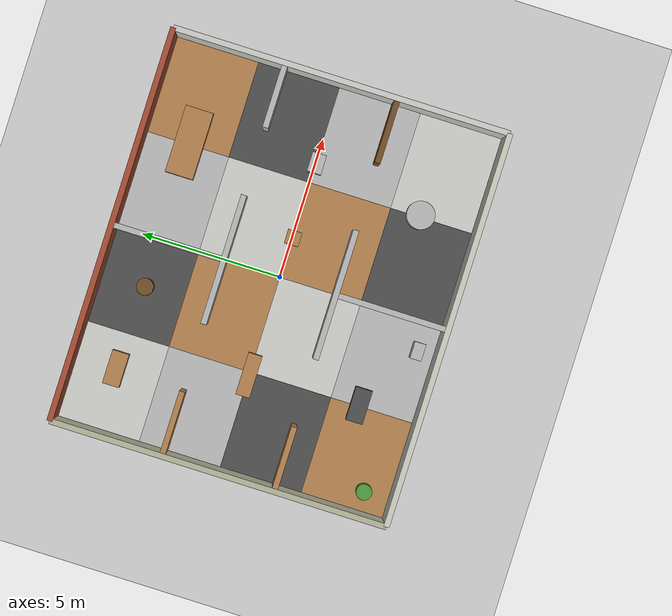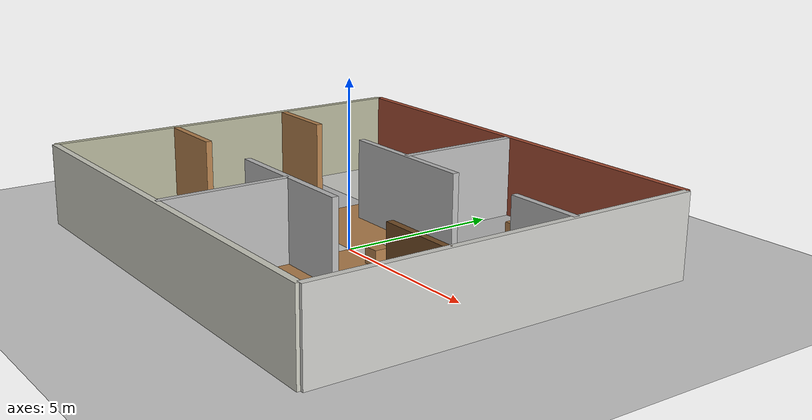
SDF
<?xml version="1.0"?>
<sdf version="1.6">
  <world name="office">
    <include><uri>model://sun</uri></include>
    <include><uri>model://ground_plane</uri></include>

    <model name="floor_skin">
      <static>true</static>
      <link name="tiles">
        <visual name="f00"><pose>-5.175 -4.425 0.002 0 0 0</pose><geometry><box><size>3.45 2.95 0.004</size></box></geometry>
          <material><script><uri>file://media/materials/scripts/gazebo.material</uri><name>Gazebo/WoodFloor</name></script></material></visual>
        <visual name="f01"><pose>-1.725 -4.425 0.002 0 0 0</pose><geometry><box><size>3.45 2.95 0.004</size></box></geometry>
          <material><script><uri>file://media/materials/scripts/gazebo.material</uri><name>Gazebo/Pedestrian</name></script></material></visual>
        <visual name="f02"><pose>1.725 -4.425 0.002 0 0 0</pose><geometry><box><size>3.45 2.95 0.004</size></box></geometry>
          <material><script><uri>file://media/materials/scripts/gazebo.material</uri><name>Gazebo/Road</name></script></material></visual>
        <visual name="f03"><pose>5.175 -4.425 0.002 0 0 0</pose><geometry><box><size>3.45 2.95 0.004</size></box></geometry>
          <material><script><uri>file://media/materials/scripts/gazebo.material</uri><name>Gazebo/CeilingTiled</name></script></material></visual>
        <visual name="f10"><pose>-5.175 -1.475 0.002 0 0 0</pose><geometry><box><size>3.45 2.95 0.004</size></box></geometry>
          <material><script><uri>file://media/materials/scripts/gazebo.material</uri><name>Gazebo/Road</name></script></material></visual>
        <visual name="f11"><pose>-1.725 -1.475 0.002 0 0 0</pose><geometry><box><size>3.45 2.95 0.004</size></box></geometry>
          <material><script><uri>file://media/materials/scripts/gazebo.material</uri><name>Gazebo/CeilingTiled</name></script></material></visual>
        <visual name="f12"><pose>1.725 -1.475 0.002 0 0 0</pose><geometry><box><size>3.45 2.95 0.004</size></box></geometry>
          <material><script><uri>file://media/materials/scripts/gazebo.material</uri><name>Gazebo/WoodFloor</name></script></material></visual>
        <visual name="f13"><pose>5.175 -1.475 0.002 0 0 0</pose><geometry><box><size>3.45 2.95 0.004</size></box></geometry>
          <material><script><uri>file://media/materials/scripts/gazebo.material</uri><name>Gazebo/Pedestrian</name></script></material></visual>
        <visual name="f20"><pose>-5.175 1.475 0.002 0 0 0</pose><geometry><box><size>3.45 2.95 0.004</size></box></geometry>
          <material><script><uri>file://media/materials/scripts/gazebo.material</uri><name>Gazebo/Pedestrian</name></script></material></visual>
        <visual name="f21"><pose>-1.725 1.475 0.002 0 0 0</pose><geometry><box><size>3.45 2.95 0.004</size></box></geometry>
          <material><script><uri>file://media/materials/scripts/gazebo.material</uri><name>Gazebo/WoodFloor</name></script></material></visual>
        <visual name="f22"><pose>1.725 1.475 0.002 0 0 0</pose><geometry><box><size>3.45 2.95 0.004</size></box></geometry>
          <material><script><uri>file://media/materials/scripts/gazebo.material</uri><name>Gazebo/CeilingTiled</name></script></material></visual>
        <visual name="f23"><pose>5.175 1.475 0.002 0 0 0</pose><geometry><box><size>3.45 2.95 0.004</size></box></geometry>
          <material><script><uri>file://media/materials/scripts/gazebo.material</uri><name>Gazebo/Road</name></script></material></visual>
        <visual name="f30"><pose>-5.175 4.425 0.002 0 0 0</pose><geometry><box><size>3.45 2.95 0.004</size></box></geometry>
          <material><script><uri>file://media/materials/scripts/gazebo.material</uri><name>Gazebo/CeilingTiled</name></script></material></visual>
        <visual name="f31"><pose>-1.725 4.425 0.002 0 0 0</pose><geometry><box><size>3.45 2.95 0.004</size></box></geometry>
          <material><script><uri>file://media/materials/scripts/gazebo.material</uri><name>Gazebo/Road</name></script></material></visual>
        <visual name="f32"><pose>1.725 4.425 0.002 0 0 0</pose><geometry><box><size>3.45 2.95 0.004</size></box></geometry>
          <material><script><uri>file://media/materials/scripts/gazebo.material</uri><name>Gazebo/Pedestrian</name></script></material></visual>
        <visual name="f33"><pose>5.175 4.425 0.002 0 0 0</pose><geometry><box><size>3.45 2.95 0.004</size></box></geometry>
          <material><script><uri>file://media/materials/scripts/gazebo.material</uri><name>Gazebo/WoodFloor</name></script></material></visual>
      </link>
    </model>

    <!-- ==== building shell + interior walls (one static model) ====
         All 12 segments textured, and all 12 DIFFERENT - see header. -->
    <model name="building">
      <static>true</static>
      <link name="walls">

        <!-- outer shell - all four sides distinct -->
        <collision name="outer_n_c"><pose>0 6 1.25 0 0 0</pose><geometry><box><size>14 0.2 2.5</size></box></geometry></collision>
        <visual   name="outer_n_v"><pose>0 6 1.25 0 0 0</pose><geometry><box><size>14 0.2 2.5</size></box></geometry>
          <material><script><uri>file://media/materials/scripts/gazebo.material</uri><name>Gazebo/Bricks</name></script></material></visual>
        <collision name="outer_s_c"><pose>0 -6 1.25 0 0 0</pose><geometry><box><size>14 0.2 2.5</size></box></geometry></collision>
        <visual   name="outer_s_v"><pose>0 -6 1.25 0 0 0</pose><geometry><box><size>14 0.2 2.5</size></box></geometry>
          <material><script><uri>file://media/materials/scripts/gazebo.material</uri><name>Gazebo/PaintedWall</name></script></material></visual>
        <collision name="outer_e_c"><pose>7 0 1.25 0 0 0</pose><geometry><box><size>0.2 12 2.5</size></box></geometry></collision>
        <visual   name="outer_e_v"><pose>7 0 1.25 0 0 0</pose><geometry><box><size>0.2 12 2.5</size></box></geometry>
          <material><script><uri>file://media/materials/scripts/gazebo.material</uri><name>Gazebo/CeilingTiled</name></script></material></visual>
        <collision name="outer_w_c"><pose>-7 0 1.25 0 0 0</pose><geometry><box><size>0.2 12 2.5</size></box></geometry></collision>
        <visual   name="outer_w_v"><pose>-7 0 1.25 0 0 0</pose><geometry><box><size>0.2 12 2.5</size></box></geometry>
          <material><script><uri>file://media/materials/scripts/gazebo.material</uri><name>Gazebo/Residential</name></script></material></visual>

        <!-- corridor / north-rooms wall (y=2), split around the two doorways -->
        <collision name="cn_1_c"><pose>-5.85 2 1.25 0 0 0</pose><geometry><box><size>2.3 0.2 2.5</size></box></geometry></collision>
        <visual   name="cn_1_v"><pose>-5.85 2 1.25 0 0 0</pose><geometry><box><size>2.3 0.2 2.5</size></box></geometry>
          <material><script><uri>file://media/materials/scripts/gazebo.material</uri><name>Gazebo/Wood</name></script></material></visual>
        <collision name="cn_2_c"><pose>0 2 1.25 0 0 0</pose><geometry><box><size>4.6 0.2 2.5</size></box></geometry></collision>
        <visual   name="cn_2_v"><pose>0 2 1.25 0 0 0</pose><geometry><box><size>4.6 0.2 2.5</size></box></geometry>
          <material><script><uri>file://media/materials/scripts/gazebo.material</uri><name>Gazebo/BuildingFrame</name></script></material></visual>
        <collision name="cn_3_c"><pose>5.85 2 1.25 0 0 0</pose><geometry><box><size>2.3 0.2 2.5</size></box></geometry></collision>
        <visual   name="cn_3_v"><pose>5.85 2 1.25 0 0 0</pose><geometry><box><size>2.3 0.2 2.5</size></box></geometry>
          <material><script><uri>file://media/materials/scripts/gazebo.material</uri><name>Gazebo/Steps</name></script></material></visual>

        <!-- corridor / south-rooms wall (y=-2), split around the two doorways -->
        <collision name="cs_1_c"><pose>-5.85 -2 1.25 0 0 0</pose><geometry><box><size>2.3 0.2 2.5</size></box></geometry></collision>
        <visual   name="cs_1_v"><pose>-5.85 -2 1.25 0 0 0</pose><geometry><box><size>2.3 0.2 2.5</size></box></geometry>
          <material><script><uri>file://media/materials/scripts/gazebo.material</uri><name>Gazebo/WoodPallet</name></script></material></visual>
        <collision name="cs_2_c"><pose>0 -2 1.25 0 0 0</pose><geometry><box><size>4.6 0.2 2.5</size></box></geometry></collision>
        <visual   name="cs_2_v"><pose>0 -2 1.25 0 0 0</pose><geometry><box><size>4.6 0.2 2.5</size></box></geometry>
          <material><script><uri>file://media/materials/scripts/gazebo.material</uri><name>Gazebo/Motorway</name></script></material></visual>
        <collision name="cs_3_c"><pose>5.85 -2 1.25 0 0 0</pose><geometry><box><size>2.3 0.2 2.5</size></box></geometry></collision>
        <visual   name="cs_3_v"><pose>5.85 -2 1.25 0 0 0</pose><geometry><box><size>2.3 0.2 2.5</size></box></geometry>
          <material><script><uri>file://media/materials/scripts/gazebo.material</uri><name>Gazebo/Trunk</name></script></material></visual>

        <!-- NW/NE dividing wall -->
        <collision name="div_n_c"><pose>0 4 1.25 0 0 0</pose><geometry><box><size>0.2 4 2.5</size></box></geometry></collision>
        <visual   name="div_n_v"><pose>0 4 1.25 0 0 0</pose><geometry><box><size>0.2 4 2.5</size></box></geometry>
          <material><script><uri>file://media/materials/scripts/gazebo.material</uri><name>Gazebo/Primary</name></script></material></visual>

        <!-- SW/SE dividing wall -->
        <collision name="div_s_c"><pose>0 -4 1.25 0 0 0</pose><geometry><box><size>0.2 4 2.5</size></box></geometry></collision>
        <visual   name="div_s_v"><pose>0 -4 1.25 0 0 0</pose><geometry><box><size>0.2 4 2.5</size></box></geometry>
          <material><script><uri>file://media/materials/scripts/gazebo.material</uri><name>Gazebo/Secondary</name></script></material></visual>

      </link>
    </model>

    <!-- ==== corridor landmark (reception desk, mid-corridor) ==== -->
    <model name="reception_desk"><static>true</static><pose>-3.53785 0 0.5 0 0 0</pose>
      <link name="l"><collision name="c"><geometry><box><size>1.5 0.5 1.0</size></box></geometry></collision>
        <visual name="v"><geometry><box><size>1.5 0.5 1.0</size></box></geometry>
          <material><script><uri>file://media/materials/scripts/gazebo.material</uri><name>Gazebo/Wood</name></script></material></visual></link></model>

    <!-- ==== NW Office: desk ==== -->
    <model name="nw_desk"><static>true</static><pose>-4.71039 4.45801 0.375 0 0 0</pose>
      <link name="l"><collision name="c"><geometry><box><size>1.2 0.6 0.75</size></box></geometry></collision>
        <visual name="v"><geometry><box><size>1.2 0.6 0.75</size></box></geometry>
          <material><script><uri>file://media/materials/scripts/gazebo.material</uri><name>Gazebo/WoodPallet</name></script></material></visual></link></model>

    <!-- ==== NE Meeting Room: table ==== -->
    <model name="ne_table"><static>true</static><pose>3.5 4.38204 0.375 0 0 0</pose>
      <link name="l"><collision name="c"><geometry><box><size>2.4 1.0 0.75</size></box></geometry></collision>
        <visual name="v"><geometry><box><size>2.4 1.0 0.75</size></box></geometry>
          <material><script><uri>file://media/materials/scripts/gazebo.material</uri><name>Gazebo/Wood</name></script></material></visual></link></model>

    <!-- ==== SW Office: desk, cabinet ==== -->
    <model name="sw_desk"><static>true</static><pose>-3.39663 -3.94467 0.375 0 0 0</pose>
      <link name="l"><collision name="c"><geometry><box><size>1.2 0.6 0.75</size></box></geometry></collision>
        <visual name="v"><geometry><box><size>1.2 0.6 0.75</size></box></geometry>
          <material><script><uri>file://media/materials/scripts/gazebo.material</uri><name>Gazebo/Road</name></script></material></visual></link></model>
    <model name="sw_cabinet"><static>true</static><pose>-1 -5.3 0.6 0 0 0</pose>
      <link name="l"><collision name="c"><geometry><box><size>0.6 0.4 1.2</size></box></geometry></collision>
        <visual name="v"><geometry><box><size>0.6 0.4 1.2</size></box></geometry>
          <material><script><uri>file://media/materials/scripts/gazebo.material</uri><name>Gazebo/Pedestrian</name></script></material></visual></link></model>

    <!-- ==== SE Break Room: round table ==== -->
    <model name="se_table"><static>true</static><pose>3.50432 -4 0.375 0 0 0</pose>
      <link name="l"><collision name="c"><geometry><cylinder><radius>0.5</radius><length>0.75</length></cylinder></geometry></collision>
        <visual name="v"><geometry><cylinder><radius>0.5</radius><length>0.75</length></cylinder></geometry>
          <material><script><uri>file://media/materials/scripts/gazebo.material</uri><name>Gazebo/Runway</name></script></material></visual></link></model>

    <!-- corridor -->
    <model name="cor_crate_w"><static>true</static><pose>1.43781 -0.031077 0.25 0 0 0.01149</pose>
      <link name="l"><collision name="c"><geometry><box><size>0.5 0.5 0.5</size></box></geometry></collision>
        <visual name="v"><geometry><box><size>0.5 0.5 0.5</size></box></geometry>
          <material><script><uri>file://media/materials/scripts/gazebo.material</uri><name>Gazebo/WoodPallet</name></script></material></visual></link></model>
    <model name="cor_box_e"><static>true</static><pose>4.13895 -0.035371 0.35 0 0 0.008045</pose>
      <link name="l"><collision name="c"><geometry><box><size>0.7 0.5 0.7</size></box></geometry></collision>
        <visual name="v"><geometry><box><size>0.7 0.5 0.7</size></box></geometry>
          <material><script><uri>file://media/materials/scripts/gazebo.material</uri><name>Gazebo/Runway</name></script></material></visual></link></model>

    <!-- NW Office -->
    <model name="nw_barrel"><static>true</static><pose>-1.70856 4.34149 0.45 0 0 0</pose>
      <link name="l"><collision name="c"><geometry><cylinder><radius>0.3</radius><length>0.9</length></cylinder></geometry></collision>
        <visual name="v"><geometry><cylinder><radius>0.3</radius><length>0.9</length></cylinder></geometry>
          <material><script><uri>file://media/materials/scripts/gazebo.material</uri><name>Gazebo/Trunk</name></script></material></visual></link></model>

    <!-- SW Office -->
    <model name="sw_barrel"><static>true</static><pose>-6.2 -5.0 0.4 0 0 0</pose>
      <link name="l"><collision name="c"><geometry><cylinder><radius>0.28</radius><length>0.8</length></cylinder></geometry></collision>
        <visual name="v"><geometry><cylinder><radius>0.28</radius><length>0.8</length></cylinder></geometry>
          <material><script><uri>file://media/materials/scripts/gazebo.material</uri><name>Gazebo/Grass</name></script></material></visual></link></model>

    <model name="overhead_cam">
      <static>true</static>
      <!-- 18 m above the building centre. Pitch 1.5708 aims the lens straight
           down; the matching yaw puts north at the top of the frame. -->
      <pose>0 0 18.0 0 1.5708 1.5708</pose>
      <link name="lens">
        <sensor name="overhead_camera" type="camera">
          <always_on>true</always_on>
          <update_rate>10</update_rate>
          <!-- No frustum drawn in the graphical client: it would sit across
               the middle of the scene during hand-driving sessions. -->
          <visualize>false</visualize>
          <camera name="overhead">
            <horizontal_fov>1.047</horizontal_fov>
            <image><width>800</width><height>600</height><format>R8G8B8</format></image>
            <clip><near>1.0</near><far>40.0</far></clip>
          </camera>
          <plugin name="overhead_cam_controller" filename="libgazebo_ros_camera.so">
            <alwaysOn>true</alwaysOn>
            <!-- 0.0 means "publish whenever the sensor renders", so the
                 10 hertz above is the single place the rate is set. -->
            <updateRate>0.0</updateRate>
            <!-- Camera name plus image topic name is what forms the published
                 topic: /overhead_cam/image_raw, with /overhead_cam/camera_info
                 beside it. -->
            <cameraName>overhead_cam</cameraName>
            <imageTopicName>image_raw</imageTopicName>
            <cameraInfoTopicName>camera_info</cameraInfoTopicName>
            <frameName>overhead_cam_optical_frame</frameName>
            <distortionK1>0.0</distortionK1>
            <distortionK2>0.0</distortionK2>
            <distortionK3>0.0</distortionK3>
            <distortionT1>0.0</distortionT1>
            <distortionT2>0.0</distortionT2>
          </plugin>
        </sensor>
      </link>
    </model>

    <physics type="ode"><real_time_update_rate>1000</real_time_update_rate><max_step_size>0.001</max_step_size></physics>
    <scene><ambient>0.5 0.5 0.5 1</ambient><background>0.7 0.7 0.7 1</background><shadows>false</shadows></scene>
  </world>
</sdf>
